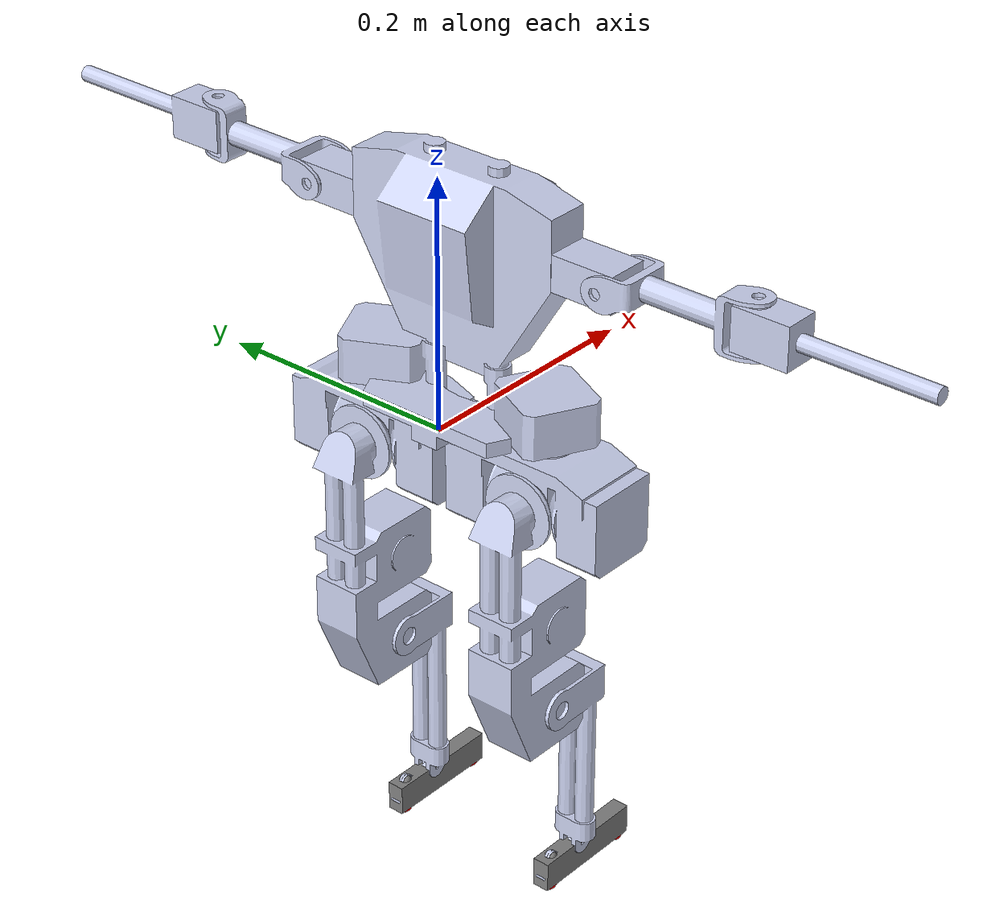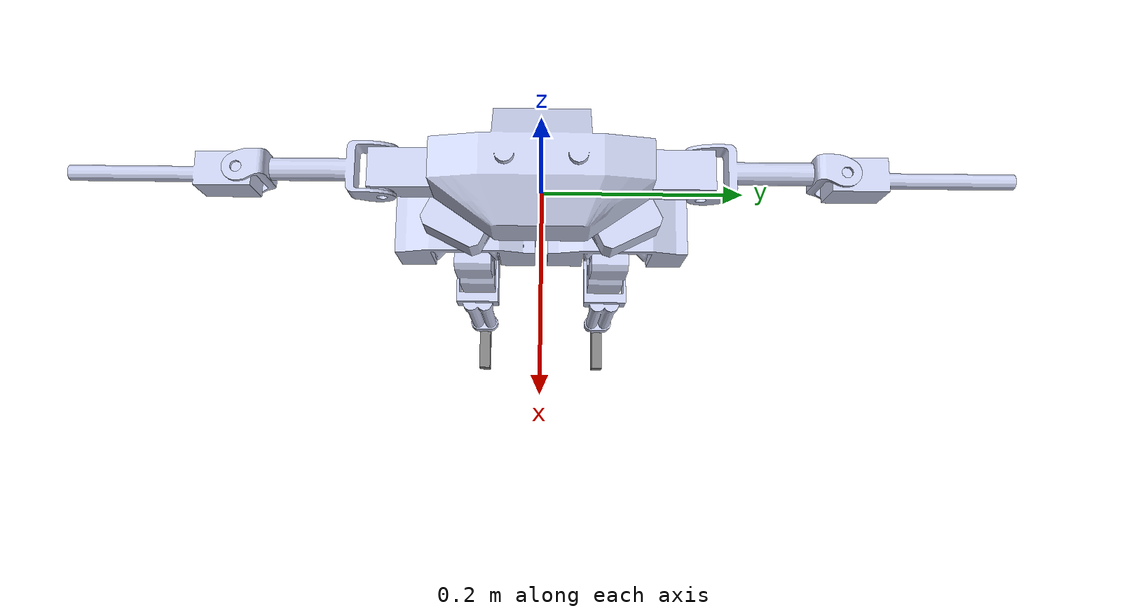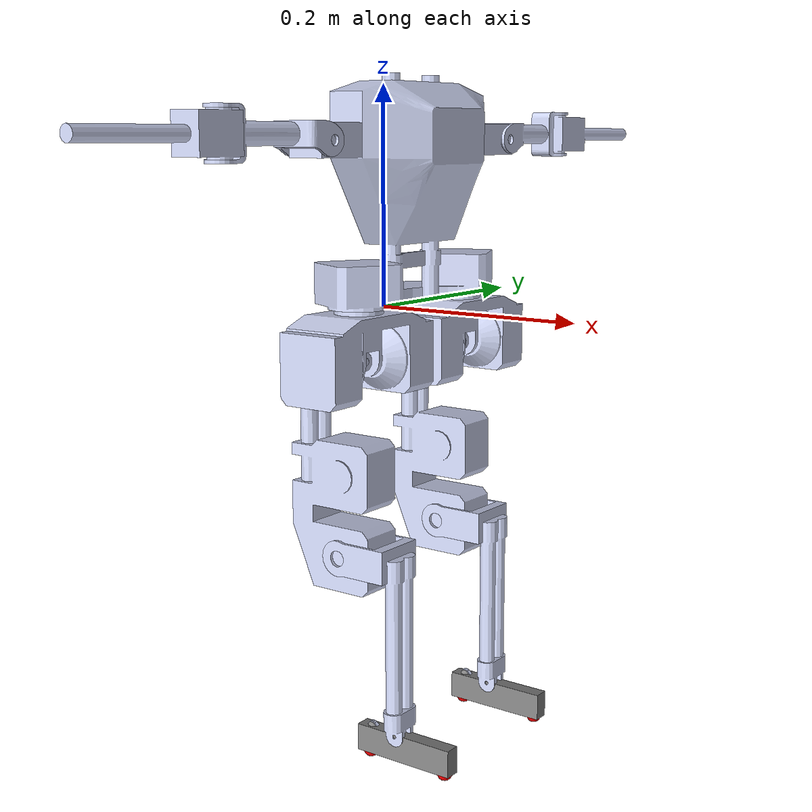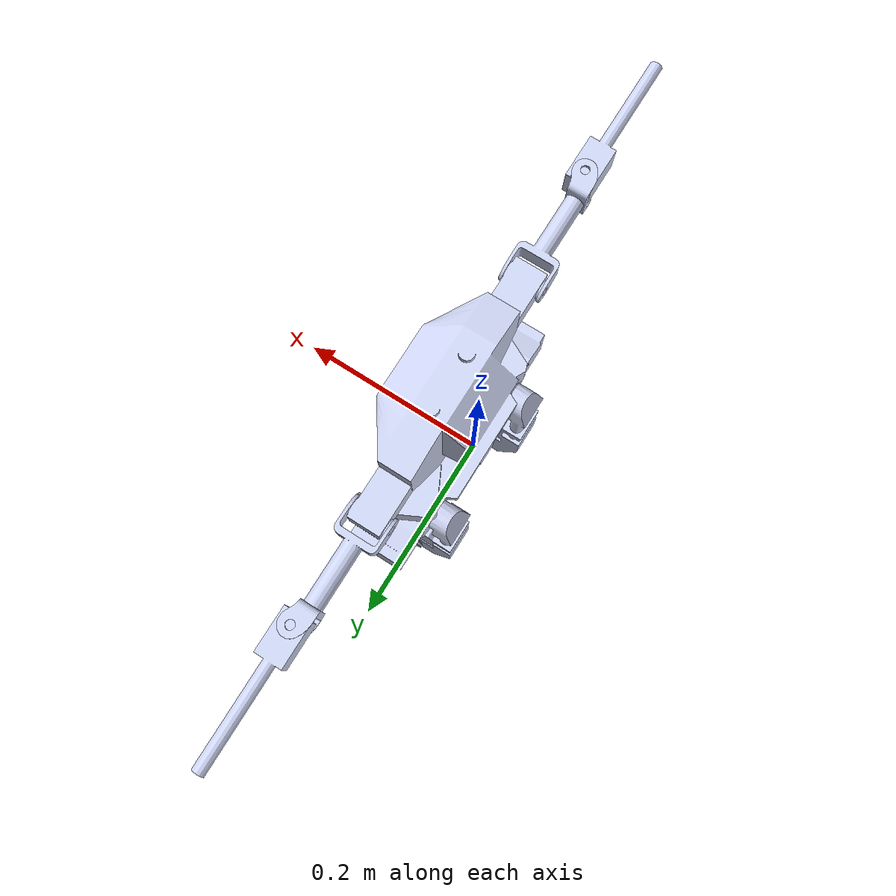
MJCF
<mujoco model="BRUCE_OG_SIMPLE_urdf">
    <compiler angle="radian" autolimits="true"/>

    <option impratio="3.5" iterations="3" ls_iterations="3" integrator="RK4" timestep="0.005">
        <flag gravity="disable"/>
    </option>

    <default>
        <default class="og_bruce">
            <geom contype="0" conaffinity="0" type="mesh" group="2"/>
            <joint damping="1.0" armature="0.011"/>
            <position ctrlrange="-3.14 3.14" kp="1000" kv="5" />

            <default class="og_bruce/collision">
                <!-- Group right now is arbitrary -->
                <geom group="1" contype="0" conaffinity="1"/>
                <default class="og_bruce/collision/foot">
                    <geom solimp="0.015 1 0.031" friction="1.5 0.02 0.01"/>
                </default>
            </default>

            <default class="og_bruce/affine_bear">
              <position forcerange="-8.0 8.0"/>
            </default>

            <default class="og_bruce/affine_dynamixel">
              <position forcerange="-1 1" />
            </default>
        </default>
    </default>

    <asset>
        <mesh name="base_link" file="og_bruce_meshes/base_link.STL"/>
        <mesh name="hip_yaw_r" file="og_bruce_meshes/hip_yaw_r.STL"/>
        <mesh name="hip_pitch_r" file="og_bruce_meshes/hip_pitch_r.STL"/>
        <mesh name="hip_roll_r" file="og_bruce_meshes/hip_roll_r.STL"/>
        <mesh name="knee_pitch_r" file="og_bruce_meshes/knee_pitch_r.STL"/>
        <mesh name="ankle_pitch_r" file="og_bruce_meshes/ankle_pitch_r.STL"/>
        <mesh name="hip_yaw_l" file="og_bruce_meshes/hip_yaw_l.STL"/>
        <mesh name="hip_pitch_l" file="og_bruce_meshes/hip_pitch_l.STL"/>
        <mesh name="hip_roll_l" file="og_bruce_meshes/hip_roll_l.STL"/>
        <mesh name="knee_pitch_l" file="og_bruce_meshes/knee_pitch_l.STL"/>
        <mesh name="ankle_pitch_l" file="og_bruce_meshes/ankle_pitch_l.STL"/>
        <mesh name="ankle_motor_link" file="og_bruce_meshes/ankle_motor_link.STL"/>
        <mesh name="ankle_motor_rod" file="og_bruce_meshes/ankle_motor_rod.STL"/>
        <mesh name="shoulder_pitch_r" file="og_bruce_meshes/shoulder_pitch_r.STL"/>
        <mesh name="shoulder_roll_r" file="og_bruce_meshes/shoulder_roll_r.STL"/>
        <mesh name="elbow_pitch_r" file="og_bruce_meshes/elbow_pitch_r.STL"/>
        <mesh name="shoulder_pitch_l" file="og_bruce_meshes/shoulder_pitch_l.STL"/>
        <mesh name="shoulder_roll_l" file="og_bruce_meshes/shoulder_roll_l.STL"/>
        <mesh name="elbow_pitch_l" file="og_bruce_meshes/elbow_pitch_l.STL"/>
    </asset>

    <worldbody>
        <body name="base_link" pos="0.0 0.0 0.0" quat="1.0 0.0 0.0 0.0" childclass="og_bruce">
            <geom type="mesh" rgba="0.79216 0.81961 0.93333 1" mesh="base_link"/>
            <inertial pos="0.02325 -0.00013 0.07844" mass="1.52819" diaginertia="0.010858132 0.00685942 0.005914725"/>

            <body name="hip_yaw_r" pos="0.029801 -0.0758555 -0.0384375" quat="0.707107 0 0 -0.707107">
                <inertial pos="0.00014312 -0.00028909 0.0072751" quat="0.509356 0.490492 0.508928 0.490884"
                          mass="0.73183" diaginertia="0.0018184 0.0016741 0.000549369"/>
                <joint name="hip_yaw_r" pos="0 0 0" axis="0 0 1" range="-1.5708 1.5708"/>
                <geom type="mesh" rgba="0.79216 0.81961 0.93333 1" mesh="hip_yaw_r"/>
                <body name="hip_pitch_r" quat="0.707107 0 0.707107 0">
                    <inertial pos="0 0 0" mass="0.01436" diaginertia="9.8342e-07 9.4912e-07 5.4852e-07"/>
                    <joint name="hip_pitch_r" pos="0 0 0" axis="0 0 1" range="-0.43633 2.4435"/>
                    <geom type="mesh" rgba="0.79216 0.81961 0.93333 1" mesh="hip_pitch_r"/>

                    <body name="hip_roll_r" quat="0.707107 -0.707107 0 0">
                        <inertial pos="0.12175 -0.00193 -0.01343" quat="0.475236 0.517443 0.542039 0.461083"
                                  mass="0.76925" diaginertia="0.00303236 0.00284069 0.000427703"/>
                        <joint name="hip_roll_r" pos="0 0 0" axis="0 0 1" range="-0.95993 0.95993"/>
                        <geom type="mesh" rgba="0.79216 0.81961 0.93333 1" mesh="hip_roll_r"/>

                        <body name="knee_pitch_r" pos="0.174817 0 -0.0075" quat="0.707107 0.707107 0 0">
                            <inertial pos="0.049407 0.03979 0.00043596" quat="-0.0540474 0.685679 -0.166088 0.706639"
                                      mass="0.092271" diaginertia="0.000345577 0.000339699 4.45904e-05"/>
                            <joint name="knee_pitch_r" pos="0 0 0" axis="0 0 -1" range="-0.7854 2.4435"/>
                            <geom type="mesh" rgba="0.79216 0.81961 0.93333 1" mesh="knee_pitch_r"/>

                            <body name="ankle_pitch_r" pos="0.1618 0.0503411 0">
                                <inertial pos="0.014913 0.0053931 0.00011234"
                                          quat="0.468881 0.503427 -0.499007 0.526977" mass="0.025"
                                          diaginertia="2.1159e-05 2.02708e-05 1.57584e-06"/>
                                <joint name="ankle_pitch_r" pos="0 0 0" axis="0 0 -1" range="-1.2566 1.0472"/>
                                <geom type="mesh" rgba="0.79216 0.81961 0.93333 1" mesh="ankle_pitch_r"/>
                                <site name="ankle_attachment_r" pos="0 -0.03 0"/>

                                <!-- Contact geometry for right foot -->
                                <body>
                                    <geom class="og_bruce/collision/foot" name="foot_contact_r" type="box" size="0.0125 0.05 0.007" pos="0.011 0.008 0"/>
                                </body>
                                <site name="footR_contact_site_front" pos="0.023 0.05 0" size="0.007" rgba="1 0 0 1"/>
                                <site name="footR_contact_site_back" pos="0.023 -0.032 0" size="0.007" rgba="1 0 0 1"/>

                            </body>
                        </body>
                        <body name="knee_pitch_r0" pos="0.174817 0 -0.0075" quat="0.707107 0.707107 0 0">
                            <inertial pos="0.0 0.0 0.0" mass="0.0001"
                                      diaginertia="4.04275e-08 3.80418e-08 7.70463e-08"/>
                            <joint name="knee_pitch_r0" pos="0 0 0" axis="0 0 1"/>
                            <body name="ankle_pitch_r1" pos="0 -0.03  0" quat="0.9886517   0  0 0.1502256">
                                <joint name="ankle_pitch_r10" pos="0 0 0" axis="0 0 1"/>
                                <inertial pos="0.0 0.0 0.0" mass="0.0001"
                                          diaginertia="4.04275e-08 3.80418e-08 7.70463e-08"/>
                                <body name="knee_pitch_r1" pos="0.1695 0  0">
                                    <joint name="knee_pitch_r1" axis="0 0 1"/>
                                    <inertial pos="0.0 0.0 0.0" mass="0.0001"
                                              diaginertia="4.04275e-08 3.80418e-08 7.70463e-08"/>
                                </body>
                            </body>
                        </body>
                    </body>
                </body>

                <body name="hip_actuatorR_l" quat="0.707107 0 0.707107 0">
                    <inertial pos="0 0 0" mass="0.001" diaginertia="1e-9 1e-9 1e-9"/>
                    <joint name="hip_actuatorR_l" pos="0 0 0" axis="0 0 1"/>
                </body>
                <body name="hip_actuatorR_r" quat="0.707107 0 0.707107 0">
                    <inertial pos="0 0 0" mass="0.001" diaginertia="1e-9 1e-9 1e-9"/>
                    <joint name="hip_actuatorR_r" pos="0 0 0" axis="0 0 -1"/>
                </body>
            </body>

            <body name="hip_yaw_l" pos="0.029801 0.0758555 -0.0384375" quat="0.707107 0 0 -0.707107">
                <inertial pos="0.00014 -0.00029 0.00728" quat="0.509356 0.490492 0.508928 0.490884" mass="0.73183"
                          diaginertia="0.0018184 0.0016741 0.000549369"/>
                <joint name="hip_yaw_l" pos="0 0 0" axis="0 0 1" range="-1.5708 1.5708"/>
                <geom type="mesh" rgba="0.79216 0.81961 0.93333 1" mesh="hip_yaw_l"/>

                <body name="hip_pitch_l" quat="0.707107 0 0.707107 0">
                    <inertial pos="0 0 0" mass="0.01436" diaginertia="9.8342e-07 9.4912e-07 5.4852e-07"/>
                    <joint name="hip_pitch_l" pos="0 0 0" axis="0 0 1" range="-0.43633 2.4435"/>
                    <geom type="mesh" rgba="0.79216 0.81961 0.93333 1" mesh="hip_pitch_l"/>

                    <body name="hip_roll_l" quat="0.707107 -0.707107 0 0">
                        <inertial pos="0.12174 0.0018 -0.01344" quat="0.458106 0.54719 0.511961 0.47814" mass="0.76925"
                                  diaginertia="0.00303267 0.00284036 0.00042805"/>
                        <joint name="hip_roll_l" pos="0 0 0" axis="0 0 1" range="-0.95993 0.95993"/>
                        <geom type="mesh" rgba="0.79216 0.81961 0.93333 1" mesh="hip_roll_l"/>

                        <body name="knee_pitch_l" pos="0.174817 0 -0.0075" quat="0.707107 0.707107 0 0">
                            <inertial pos="0.049014 0.039754 -0.00044194" quat="0.165544 0.706684 0.0527763 0.685862"
                                      mass="0.091949" diaginertia="0.000341457 0.000335584 4.45378e-05"/>
                            <joint name="knee_pitch_l" pos="0 0 0" axis="0 0 -1" range="-0.7854 2.4435"/>
                            <geom type="mesh" rgba="0.79216 0.81961 0.93333 1" mesh="knee_pitch_l"/>

                            <body name="ankle_pitch_l" pos="0.1618 0.0503411 0">
                                <inertial pos="0.01509 0.0056392 -0.00011925"
                                          quat="0.500518 0.525947 -0.470146 0.501821" mass="0.025"
                                          diaginertia="2.1386e-05 2.05126e-05 1.53437e-06"/>
                                <joint name="ankle_pitch_l" pos="0 0 0" axis="0 0 -1" range="-1.2566 1.0472"/>
                                <geom type="mesh" rgba="0.79216 0.81961 0.93333 1" mesh="ankle_pitch_l"/>
                                <site name="ankle_attachment_l" pos="0 -0.03 0"/>

                                <!-- Contact geometry for left foot -->
                                <body>
                                    <geom class="og_bruce/collision/foot" name="foot_contact_l" type="box" size="0.0125 0.05 0.007" pos="0.0115 0.008 0"/>
                                </body>
                                <site name="footL_contact_site_front" pos="0.023 0.05 0" size="0.007" rgba="1 0 0 1"/>
                                <site name="footL_contact_site_back" pos="0.023 -0.032 0" size="0.007" rgba="1 0 0 1"/>

                            </body>
                        </body>
                        <body name="knee_pitch_l0" pos="0.174817 0 -0.0075" quat="0.707107 0.707107 0 0">
                            <inertial pos="0.0 0.0 0.0" mass="0.0001"
                                      diaginertia="4.04275e-08 3.80418e-08 7.70463e-08"/>
                            <joint name="knee_pitch_l0" pos="0 0 0" axis="0 0 1"/>

                            <body name="ankle_pitch_l1" pos="0 -0.03  0" quat="0.9886517 0  0 0.1502256">
                                <joint name="ankle_pitch_l1" pos="0 0 0" axis="0 0 1"/>
                                <inertial pos="0.0 0.0 0.0" mass="0.0001"
                                          diaginertia="4.04275e-08 3.80418e-08 7.70463e-08"/>
                                <body name="knee_pitch_l1" pos="0.1695 0  0">
                                    <joint name="knee_pitch_l1" axis="0 0 1"/>
                                    <inertial pos="0.0 0.0 0.0" mass="0.0001"
                                              diaginertia="4.04275e-08 3.80418e-08 7.70463e-08"/>
                                </body>
                            </body>
                        </body>
                    </body>
                </body>

                <body name="hip_actuatorL_l" quat="0.707107 0 0.707107 0">
                    <inertial pos="0 0 0" mass="0.001" diaginertia="1e-9 1e-9 1e-9"/>
                    <joint name="hip_actuatorL_l" pos="0 0 0" axis="0 0 1"/>
                </body>

                <body name="hip_actuatorL_r" quat="0.707107 0 0.707107 0">
                    <inertial pos="0 0 0" mass="0.001" diaginertia="1e-9 1e-9 1e-9"/>
                    <joint name="hip_actuatorL_r" pos="0 0 0" axis="0 0 -1"/>
                </body>

            </body>

            <!-- Upper Body -->
            <body name="shoulder_pitch_r" pos="0.029801 -0.13225 0.151062" quat="0.5 0.5 -0.5 0.5">
                <inertial pos="0 -0.0004 -0.01353" quat="0.999973 -0.00739362 -1.23246e-06 4.94233e-06" mass="0.08908"
                          diaginertia="1.6397e-05 1.54135e-05 8.45928e-06"/>
                <joint name="shoulder_pitch_r" pos="0 0 0" axis="0 0 -1" range="-3.1416 3.1416"/>
                <geom type="mesh" rgba="0.79216 0.81961 0.93333 1" mesh="shoulder_pitch_r"/>
                <body name="shoulder_roll_r" quat="0.5 0.5 -0.5 0.5">
                    <inertial pos="0.05766 -0.00412 0.00077" quat="0.540311 0.434098 0.57106 0.439902" mass="0.03581"
                              diaginertia="6.66828e-05 6.63384e-05 1.03399e-05"/>
                    <joint name="shoulder_roll_r" pos="0 0 0" axis="0 0 1" range="-1.4835 1.8326"/>
                    <geom type="mesh" rgba="0.79216 0.81961 0.93333 1" mesh="shoulder_roll_r"/>
                    <body name="elbow_pitch_r" pos="0.1145 -0.005 0.005" quat="0.707107 0.707107 0 0">
                        <inertial pos="0.01939 0 0.00038" quat="0.50135 0.498646 0.498646 0.50135" mass="0.09342"
                                  diaginertia="6.6448e-05 6.49187e-05 7.73303e-06"/>
                        <joint name="elbow_pitch_r" pos="0 0 0" axis="0 0 -1" range="-2.0595 1.5708"/>
                        <geom type="mesh" rgba="0.79216 0.81961 0.93333 1" mesh="elbow_pitch_r"/>
                    </body>
                </body>
            </body>
            <body name="shoulder_pitch_l" pos="0.029801 0.13225 0.151062" quat="0.5 -0.5 0.5 0.5">
                <inertial pos="0 -0.0004 -0.01353" quat="0.999973 -0.00739362 -1.23246e-06 4.94233e-06" mass="0.08908"
                          diaginertia="1.6397e-05 1.54135e-05 8.45928e-06"/>
                <joint name="shoulder_pitch_l" pos="0 0 0" axis="0 0 -1" range="-3.1416 3.1416"/>
                <geom type="mesh" rgba="0.79216 0.81961 0.93333 1" mesh="shoulder_pitch_l"/>
                <body name="shoulder_roll_l" quat="0.499998 0.5 -0.5 0.500002">
                    <inertial pos="0.05766 0.00411 0.00077" quat="0.439864 0.571051 0.43411 0.540341" mass="0.03581"
                              diaginertia="6.66824e-05 6.63384e-05 1.03402e-05"/>
                    <joint name="shoulder_roll_l" pos="0 0 0" axis="0 0 1" range="-1.8326 1.4835"/>
                    <geom type="mesh" rgba="0.79216 0.81961 0.93333 1" mesh="shoulder_roll_l"/>
                    <body name="elbow_pitch_l" pos="0.1145 0.005 0.005" quat="0.707107 -0.707107 0 0">
                        <inertial pos="0.01939 0 0.00038" quat="0.50135 0.498646 0.498646 0.50135" mass="0.09342"
                                  diaginertia="6.6448e-05 6.49187e-05 7.73303e-06"/>
                        <joint name="elbow_pitch_l" pos="0 0 0" axis="0 0 -1" range="-1.5708 2.0595"/>
                        <geom type="mesh" rgba="0.79216 0.81961 0.93333 1" mesh="elbow_pitch_l"/>
                    </body>
                </body>
            </body>
        </body>
    </worldbody>

    <!-- Actuators for lower body joints using the leg actuator parameters -->
    <actuator>
        <!-- Right leg actuators with control ranges -->
        <position class="og_bruce/affine_bear" joint="hip_yaw_r" name="hip_yaw_r"/>
        <position class="og_bruce/affine_bear" joint="hip_actuatorR_r" name="hip_actuatorR_r"/>
        <position class="og_bruce/affine_bear" joint="hip_actuatorR_l" name="hip_actuatorR_l"/>
        <position class="og_bruce/affine_bear" joint="knee_pitch_r" name="knee_pitch_r"/>
        <position class="og_bruce/affine_bear" joint="knee_pitch_r0" name="ankle_pitch_r"/>

        <!-- Left leg actuators with control ranges -->
        <position class="og_bruce/affine_bear" joint="hip_yaw_l" name="hip_yaw_l"/>
        <position class="og_bruce/affine_bear" joint="hip_actuatorL_r" name="hip_actuatorL_r"/>
        <position class="og_bruce/affine_bear" joint="hip_actuatorL_l" name="hip_actuatorL_l"/>
        <position class="og_bruce/affine_bear" joint="knee_pitch_l" name="knee_pitch_l"/>
        <position class="og_bruce/affine_bear" joint="knee_pitch_l0" name="ankle_pitch_l"/>
    </actuator>

    <!-- Actuators for upper body joints using the arm actuator parameters -->
    <actuator>
        <!-- Right arm actuators -->
        <position class="og_bruce/affine_dynamixel" joint="shoulder_pitch_r" name="shoulder_pitch_r"/>
        <position class="og_bruce/affine_dynamixel" joint="shoulder_roll_r" name="shoulder_roll_r"/>
        <position class="og_bruce/affine_dynamixel" joint="elbow_pitch_r" name="elbow_pitch_r"/>

        <!-- Left arm actuators -->
        <position class="og_bruce/affine_dynamixel" joint="shoulder_pitch_l" name="shoulder_pitch_l"/>
        <position class="og_bruce/affine_dynamixel" joint="shoulder_roll_l" name="shoulder_roll_l"/>
        <position class="og_bruce/affine_dynamixel" joint="elbow_pitch_l" name="elbow_pitch_l"/>
    </actuator>

    <tendon>
        <!-- Parallel mechanism for right leg -->
        <fixed name="roll_r">
            <joint joint="hip_roll_r" coef="1"/>
        </fixed>
        <fixed name="pitch_r">
            <joint joint="hip_pitch_r" coef="1"/>
        </fixed>
        <fixed name="sum_r">
            <joint joint="hip_actuatorR_r" coef="0.5"/>
            <joint joint="hip_actuatorR_l" coef="0.5"/>
        </fixed>
        <fixed name="diff_r">
            <joint joint="hip_actuatorR_r" coef=".5"/>
            <joint joint="hip_actuatorR_l" coef="-.5"/>
        </fixed>

        <!-- Parallel mechanism for left leg -->
        <fixed name="roll_l">
            <joint joint="hip_roll_l" coef="1"/>
        </fixed>
        <fixed name="pitch_l">
            <joint joint="hip_pitch_l" coef="1"/>
        </fixed>
        <fixed name="sum_l">
            <joint joint="hip_actuatorL_r" coef="0.5"/>
            <joint joint="hip_actuatorL_l" coef="0.5"/>
        </fixed>
        <fixed name="diff_l">
            <joint joint="hip_actuatorL_r" coef=".5"/>
            <joint joint="hip_actuatorL_l" coef="-.5"/>
        </fixed>
    </tendon>

    <equality>
        <!-- For right differential mechanism -->
        <tendon tendon1="roll_r" tendon2="sum_r" polycoef="0 -1 0 0 0"/>
        <tendon tendon1="pitch_r" tendon2="diff_r" polycoef="0 -1 0 0 0"/>
        <!-- For left differential mechanism -->
        <tendon tendon1="roll_l" tendon2="sum_l" polycoef="0 -1 0 0 0"/>
        <tendon tendon1="pitch_l" tendon2="diff_l" polycoef="0 -1 0 0 0"/>
        <!-- For 5-bar linkage mechanisms -->
        <!-- Connecting body will assume the link is closed when loaded. Constraints can break with infeasible joints. -->
        <!-- Connecting sites will enforce two points to be connected, but the simulation becomes unstable when infeasible -->
        <connect anchor="0 0 0" solref="0.005 1" body1="knee_pitch_r1" body2="ankle_pitch_r" name="equality_knee_r"/>
        <connect anchor="0 0 0" solref="0.005 1" body1="knee_pitch_l1" body2="ankle_pitch_l" name="equality_knee_l"/>
    </equality>
</mujoco>
